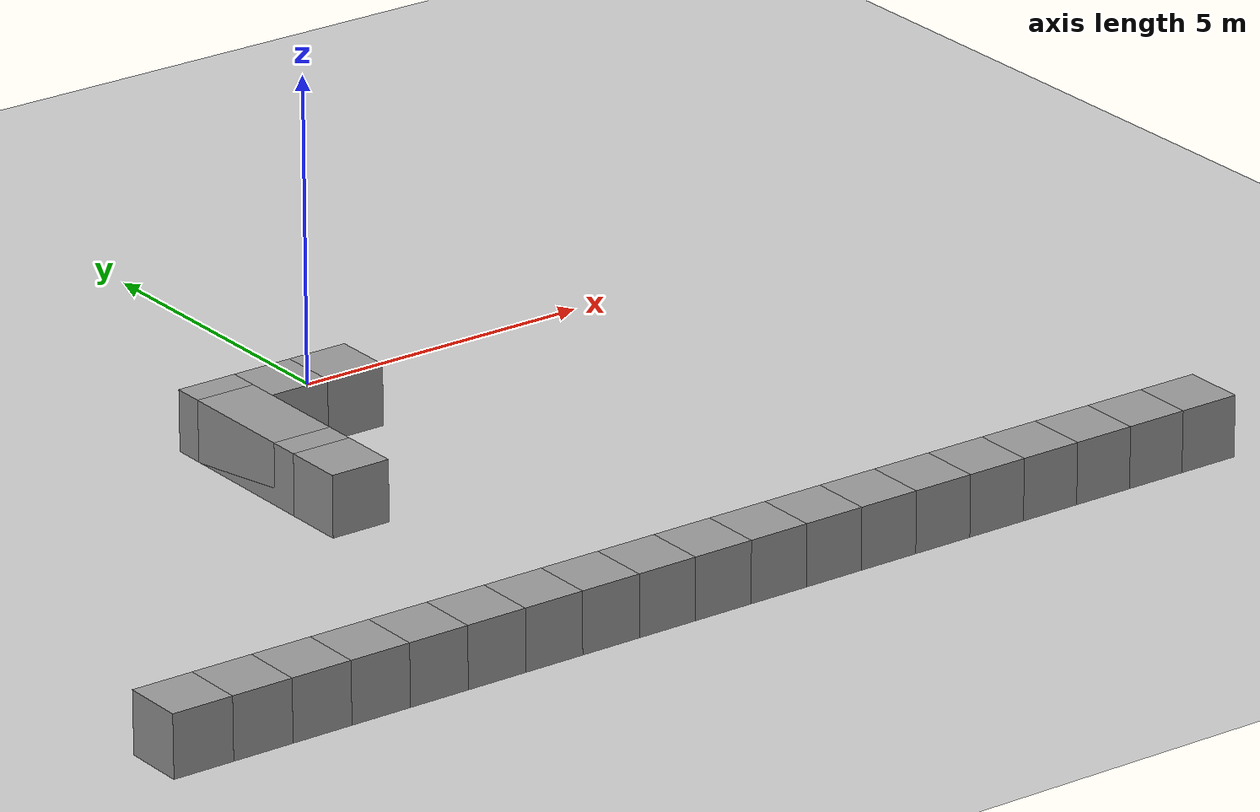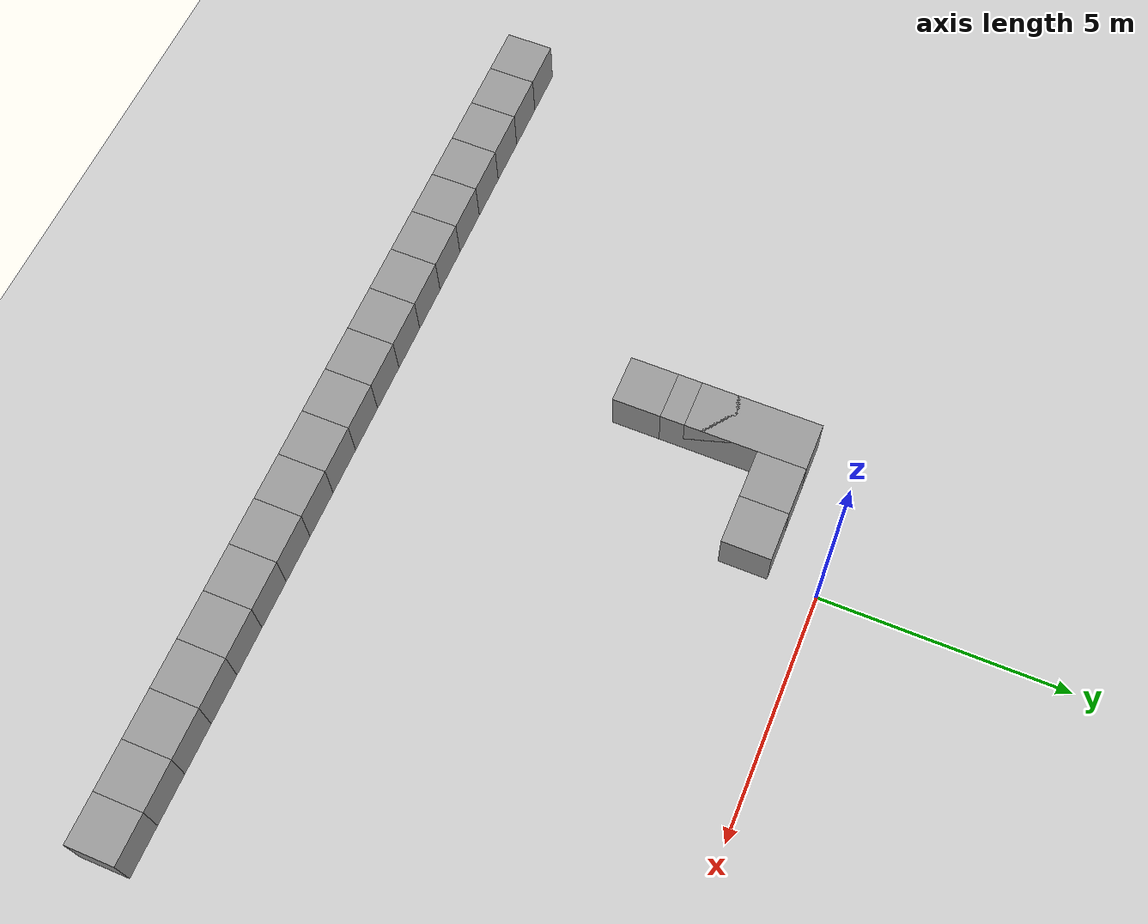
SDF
<sdf version="1.6">
 <world name="default">
  <model name="ground_plane">
   <static>1</static>
   <link name="link">
    <collision name="collision">
     <geometry><plane><normal>0 0 1</normal><size>100 100</size></plane></geometry>
     <surface><friction><ode><mu>100</mu><mu2>50</mu2></ode></friction></surface>
    </collision>
    <visual name="visual">
     <cast_shadows>0</cast_shadows>
     <geometry><plane><normal>0 0 1</normal><size>100 100</size></plane></geometry>
     <material>
      <script><uri>file://media/materials/scripts/gazebo.material</uri><name>Gazebo/Grey</name></script>
     </material>
    </visual>
   </link>
  </model>
  <model name="wall4">
   <link name="link">
    <inertial>
     <mass>1</mass>
     <inertia>
      <ixx>0.166667</ixx>
      <ixy>0</ixy>
      <ixz>0</ixz>
      <iyy>0.166667</iyy>
      <iyz>0</iyz>
      <izz>0.166667</izz>
     </inertia>
    </inertial>
    <visual name="visual">
     <geometry><box><size>1 1 1</size></box></geometry>
     <material>
      <script><name>Gazebo/Grey</name><uri>file://media/materials/scripts/gazebo.material</uri></script>
      <ambient>0.3 0.3 0.3 1</ambient>
      <diffuse>0.7 0.7 0.7 1</diffuse>
      <specular>0.01 0.01 0.01 1</specular>
      <emissive>0 0 0 1</emissive>
     </material>
    </visual>
    <collision name="collision">
     <geometry><box><size>1 1 1</size></box></geometry>
     <surface>
      <friction>
       <ode><mu>1</mu><mu2>1</mu2><fdir1>0 0 0</fdir1><slip1>0</slip1><slip2>0</slip2></ode>
       <torsional>
        <coefficient>1</coefficient>
        <patch_radius>0</patch_radius>
        <surface_radius>0</surface_radius>
        <use_patch_radius>1</use_patch_radius>
        <ode><slip>0</slip></ode>
       </torsional>
      </friction>
      <bounce><restitution_coefficient>0</restitution_coefficient><threshold>1e+06</threshold></bounce>
      <contact>
       <collide_without_contact>0</collide_without_contact>
       <collide_without_contact_bitmask>1</collide_without_contact_bitmask>
       <collide_bitmask>1</collide_bitmask>
       <ode>
        <soft_cfm>0</soft_cfm>
        <soft_erp>0.2</soft_erp>
        <kp>1e+13</kp>
        <kd>1</kd>
        <max_vel>0.01</max_vel>
        <min_depth>0</min_depth>
       </ode>
       <bullet>
        <split_impulse>1</split_impulse>
        <split_impulse_penetration_threshold>-0.01</split_impulse_penetration_threshold>
        <soft_cfm>0</soft_cfm>
        <soft_erp>0.2</soft_erp>
        <kp>1e+13</kp>
        <kd>1</kd>
       </bullet>
      </contact>
     </surface>
    </collision>
   </link>
   <link name="link_25">
    <pose>1 0 0 0 -0 0</pose>
    <inertial>
     <mass>1</mass>
     <inertia>
      <ixx>0.166667</ixx>
      <ixy>0</ixy>
      <ixz>0</ixz>
      <iyy>0.166667</iyy>
      <iyz>0</iyz>
      <izz>0.166667</izz>
     </inertia>
    </inertial>
    <visual name="visual">
     <geometry><box><size>1 1 1</size></box></geometry>
     <material>
      <lighting>1</lighting>
      <script><uri>file://media/materials/scripts/gazebo.material</uri><name>Gazebo/Grey</name></script>
      <ambient>0.3 0.3 0.3 1</ambient>
      <diffuse>0.7 0.7 0.7 1</diffuse>
      <specular>0.01 0.01 0.01 1</specular>
      <emissive>0 0 0 1</emissive>
     </material>
    </visual>
    <collision name="collision">
     <geometry><box><size>1 1 1</size></box></geometry>
     <surface>
      <friction>
       <ode><mu>1</mu><mu2>1</mu2><fdir1>0 0 0</fdir1><slip1>0</slip1><slip2>0</slip2></ode>
       <torsional>
        <coefficient>1</coefficient>
        <patch_radius>0</patch_radius>
        <surface_radius>0</surface_radius>
        <use_patch_radius>1</use_patch_radius>
        <ode><slip>0</slip></ode>
       </torsional>
      </friction>
      <bounce><restitution_coefficient>0</restitution_coefficient><threshold>1e+06</threshold></bounce>
      <contact>
       <collide_without_contact>0</collide_without_contact>
       <collide_without_contact_bitmask>1</collide_without_contact_bitmask>
       <collide_bitmask>1</collide_bitmask>
       <ode>
        <soft_cfm>0</soft_cfm>
        <soft_erp>0.2</soft_erp>
        <kp>1e+13</kp>
        <kd>1</kd>
        <max_vel>0.01</max_vel>
        <min_depth>0</min_depth>
       </ode>
       <bullet>
        <split_impulse>1</split_impulse>
        <split_impulse_penetration_threshold>-0.01</split_impulse_penetration_threshold>
        <soft_cfm>0</soft_cfm>
        <soft_erp>0.2</soft_erp>
        <kp>1e+13</kp>
        <kd>1</kd>
       </bullet>
      </contact>
     </surface>
    </collision>
   </link>
   <link name="link_26">
    <pose>2 0 0 0 -0 0</pose>
    <inertial>
     <mass>1</mass>
     <inertia>
      <ixx>0.166667</ixx>
      <ixy>0</ixy>
      <ixz>0</ixz>
      <iyy>0.166667</iyy>
      <iyz>0</iyz>
      <izz>0.166667</izz>
     </inertia>
    </inertial>
    <visual name="visual">
     <geometry><box><size>1 1 1</size></box></geometry>
     <material>
      <lighting>1</lighting>
      <script><uri>file://media/materials/scripts/gazebo.material</uri><name>Gazebo/Grey</name></script>
      <ambient>0.3 0.3 0.3 1</ambient>
      <diffuse>0.7 0.7 0.7 1</diffuse>
      <specular>0.01 0.01 0.01 1</specular>
      <emissive>0 0 0 1</emissive>
     </material>
    </visual>
    <collision name="collision">
     <geometry><box><size>1 1 1</size></box></geometry>
     <surface>
      <friction>
       <ode><mu>1</mu><mu2>1</mu2><fdir1>0 0 0</fdir1><slip1>0</slip1><slip2>0</slip2></ode>
       <torsional>
        <coefficient>1</coefficient>
        <patch_radius>0</patch_radius>
        <surface_radius>0</surface_radius>
        <use_patch_radius>1</use_patch_radius>
        <ode><slip>0</slip></ode>
       </torsional>
      </friction>
      <bounce><restitution_coefficient>0</restitution_coefficient><threshold>1e+06</threshold></bounce>
      <contact>
       <collide_without_contact>0</collide_without_contact>
       <collide_without_contact_bitmask>1</collide_without_contact_bitmask>
       <collide_bitmask>1</collide_bitmask>
       <ode>
        <soft_cfm>0</soft_cfm>
        <soft_erp>0.2</soft_erp>
        <kp>1e+13</kp>
        <kd>1</kd>
        <max_vel>0.01</max_vel>
        <min_depth>0</min_depth>
       </ode>
       <bullet>
        <split_impulse>1</split_impulse>
        <split_impulse_penetration_threshold>-0.01</split_impulse_penetration_threshold>
        <soft_cfm>0</soft_cfm>
        <soft_erp>0.2</soft_erp>
        <kp>1e+13</kp>
        <kd>1</kd>
       </bullet>
      </contact>
     </surface>
    </collision>
   </link>
   <link name="link_27">
    <pose>3 0 0 0 -0 0</pose>
    <inertial>
     <mass>1</mass>
     <inertia>
      <ixx>0.166667</ixx>
      <ixy>0</ixy>
      <ixz>0</ixz>
      <iyy>0.166667</iyy>
      <iyz>0</iyz>
      <izz>0.166667</izz>
     </inertia>
    </inertial>
    <visual name="visual">
     <geometry><box><size>1 1 1</size></box></geometry>
     <material>
      <lighting>1</lighting>
      <script><uri>file://media/materials/scripts/gazebo.material</uri><name>Gazebo/Grey</name></script>
      <ambient>0.3 0.3 0.3 1</ambient>
      <diffuse>0.7 0.7 0.7 1</diffuse>
      <specular>0.01 0.01 0.01 1</specular>
      <emissive>0 0 0 1</emissive>
     </material>
    </visual>
    <collision name="collision">
     <geometry><box><size>1 1 1</size></box></geometry>
     <surface>
      <friction>
       <ode><mu>1</mu><mu2>1</mu2><fdir1>0 0 0</fdir1><slip1>0</slip1><slip2>0</slip2></ode>
       <torsional>
        <coefficient>1</coefficient>
        <patch_radius>0</patch_radius>
        <surface_radius>0</surface_radius>
        <use_patch_radius>1</use_patch_radius>
        <ode><slip>0</slip></ode>
       </torsional>
      </friction>
      <bounce><restitution_coefficient>0</restitution_coefficient><threshold>1e+06</threshold></bounce>
      <contact>
       <collide_without_contact>0</collide_without_contact>
       <collide_without_contact_bitmask>1</collide_without_contact_bitmask>
       <collide_bitmask>1</collide_bitmask>
       <ode>
        <soft_cfm>0</soft_cfm>
        <soft_erp>0.2</soft_erp>
        <kp>1e+13</kp>
        <kd>1</kd>
        <max_vel>0.01</max_vel>
        <min_depth>0</min_depth>
       </ode>
       <bullet>
        <split_impulse>1</split_impulse>
        <split_impulse_penetration_threshold>-0.01</split_impulse_penetration_threshold>
        <soft_cfm>0</soft_cfm>
        <soft_erp>0.2</soft_erp>
        <kp>1e+13</kp>
        <kd>1</kd>
       </bullet>
      </contact>
     </surface>
    </collision>
   </link>
   <link name="link_28">
    <pose>4 0 0 0 -0 0</pose>
    <inertial>
     <mass>1</mass>
     <inertia>
      <ixx>0.166667</ixx>
      <ixy>0</ixy>
      <ixz>0</ixz>
      <iyy>0.166667</iyy>
      <iyz>0</iyz>
      <izz>0.166667</izz>
     </inertia>
    </inertial>
    <visual name="visual">
     <geometry><box><size>1 1 1</size></box></geometry>
     <material>
      <lighting>1</lighting>
      <script><uri>file://media/materials/scripts/gazebo.material</uri><name>Gazebo/Grey</name></script>
      <ambient>0.3 0.3 0.3 1</ambient>
      <diffuse>0.7 0.7 0.7 1</diffuse>
      <specular>0.01 0.01 0.01 1</specular>
      <emissive>0 0 0 1</emissive>
     </material>
    </visual>
    <collision name="collision">
     <geometry><box><size>1 1 1</size></box></geometry>
     <surface>
      <friction>
       <ode><mu>1</mu><mu2>1</mu2><fdir1>0 0 0</fdir1><slip1>0</slip1><slip2>0</slip2></ode>
       <torsional>
        <coefficient>1</coefficient>
        <patch_radius>0</patch_radius>
        <surface_radius>0</surface_radius>
        <use_patch_radius>1</use_patch_radius>
        <ode><slip>0</slip></ode>
       </torsional>
      </friction>
      <bounce><restitution_coefficient>0</restitution_coefficient><threshold>1e+06</threshold></bounce>
      <contact>
       <collide_without_contact>0</collide_without_contact>
       <collide_without_contact_bitmask>1</collide_without_contact_bitmask>
       <collide_bitmask>1</collide_bitmask>
       <ode>
        <soft_cfm>0</soft_cfm>
        <soft_erp>0.2</soft_erp>
        <kp>1e+13</kp>
        <kd>1</kd>
        <max_vel>0.01</max_vel>
        <min_depth>0</min_depth>
       </ode>
       <bullet>
        <split_impulse>1</split_impulse>
        <split_impulse_penetration_threshold>-0.01</split_impulse_penetration_threshold>
        <soft_cfm>0</soft_cfm>
        <soft_erp>0.2</soft_erp>
        <kp>1e+13</kp>
        <kd>1</kd>
       </bullet>
      </contact>
     </surface>
    </collision>
   </link>
   <link name="link_29">
    <pose>5 0 0 0 -0 0</pose>
    <inertial>
     <mass>1</mass>
     <inertia>
      <ixx>0.166667</ixx>
      <ixy>0</ixy>
      <ixz>0</ixz>
      <iyy>0.166667</iyy>
      <iyz>0</iyz>
      <izz>0.166667</izz>
     </inertia>
    </inertial>
    <visual name="visual">
     <geometry><box><size>1 1 1</size></box></geometry>
     <material>
      <lighting>1</lighting>
      <script><uri>file://media/materials/scripts/gazebo.material</uri><name>Gazebo/Grey</name></script>
      <ambient>0.3 0.3 0.3 1</ambient>
      <diffuse>0.7 0.7 0.7 1</diffuse>
      <specular>0.01 0.01 0.01 1</specular>
      <emissive>0 0 0 1</emissive>
     </material>
    </visual>
    <collision name="collision">
     <geometry><box><size>1 1 1</size></box></geometry>
     <surface>
      <friction>
       <ode><mu>1</mu><mu2>1</mu2><fdir1>0 0 0</fdir1><slip1>0</slip1><slip2>0</slip2></ode>
       <torsional>
        <coefficient>1</coefficient>
        <patch_radius>0</patch_radius>
        <surface_radius>0</surface_radius>
        <use_patch_radius>1</use_patch_radius>
        <ode><slip>0</slip></ode>
       </torsional>
      </friction>
      <bounce><restitution_coefficient>0</restitution_coefficient><threshold>1e+06</threshold></bounce>
      <contact>
       <collide_without_contact>0</collide_without_contact>
       <collide_without_contact_bitmask>1</collide_without_contact_bitmask>
       <collide_bitmask>1</collide_bitmask>
       <ode>
        <soft_cfm>0</soft_cfm>
        <soft_erp>0.2</soft_erp>
        <kp>1e+13</kp>
        <kd>1</kd>
        <max_vel>0.01</max_vel>
        <min_depth>0</min_depth>
       </ode>
       <bullet>
        <split_impulse>1</split_impulse>
        <split_impulse_penetration_threshold>-0.01</split_impulse_penetration_threshold>
        <soft_cfm>0</soft_cfm>
        <soft_erp>0.2</soft_erp>
        <kp>1e+13</kp>
        <kd>1</kd>
       </bullet>
      </contact>
     </surface>
    </collision>
   </link>
   <link name="link_30">
    <pose>6 0 0 0 -0 0</pose>
    <inertial>
     <mass>1</mass>
     <inertia>
      <ixx>0.166667</ixx>
      <ixy>0</ixy>
      <ixz>0</ixz>
      <iyy>0.166667</iyy>
      <iyz>0</iyz>
      <izz>0.166667</izz>
     </inertia>
    </inertial>
    <visual name="visual">
     <geometry><box><size>1 1 1</size></box></geometry>
     <material>
      <lighting>1</lighting>
      <script><uri>file://media/materials/scripts/gazebo.material</uri><name>Gazebo/Grey</name></script>
      <ambient>0.3 0.3 0.3 1</ambient>
      <diffuse>0.7 0.7 0.7 1</diffuse>
      <specular>0.01 0.01 0.01 1</specular>
      <emissive>0 0 0 1</emissive>
     </material>
    </visual>
    <collision name="collision">
     <geometry><box><size>1 1 1</size></box></geometry>
     <surface>
      <friction>
       <ode><mu>1</mu><mu2>1</mu2><fdir1>0 0 0</fdir1><slip1>0</slip1><slip2>0</slip2></ode>
       <torsional>
        <coefficient>1</coefficient>
        <patch_radius>0</patch_radius>
        <surface_radius>0</surface_radius>
        <use_patch_radius>1</use_patch_radius>
        <ode><slip>0</slip></ode>
       </torsional>
      </friction>
      <bounce><restitution_coefficient>0</restitution_coefficient><threshold>1e+06</threshold></bounce>
      <contact>
       <collide_without_contact>0</collide_without_contact>
       <collide_without_contact_bitmask>1</collide_without_contact_bitmask>
       <collide_bitmask>1</collide_bitmask>
       <ode>
        <soft_cfm>0</soft_cfm>
        <soft_erp>0.2</soft_erp>
        <kp>1e+13</kp>
        <kd>1</kd>
        <max_vel>0.01</max_vel>
        <min_depth>0</min_depth>
       </ode>
       <bullet>
        <split_impulse>1</split_impulse>
        <split_impulse_penetration_threshold>-0.01</split_impulse_penetration_threshold>
        <soft_cfm>0</soft_cfm>
        <soft_erp>0.2</soft_erp>
        <kp>1e+13</kp>
        <kd>1</kd>
       </bullet>
      </contact>
     </surface>
    </collision>
   </link>
   <link name="link_31">
    <pose>7 0 0 0 -0 0</pose>
    <inertial>
     <mass>1</mass>
     <inertia>
      <ixx>0.166667</ixx>
      <ixy>0</ixy>
      <ixz>0</ixz>
      <iyy>0.166667</iyy>
      <iyz>0</iyz>
      <izz>0.166667</izz>
     </inertia>
    </inertial>
    <visual name="visual">
     <geometry><box><size>1 1 1</size></box></geometry>
     <material>
      <lighting>1</lighting>
      <script><uri>file://media/materials/scripts/gazebo.material</uri><name>Gazebo/Grey</name></script>
      <ambient>0.3 0.3 0.3 1</ambient>
      <diffuse>0.7 0.7 0.7 1</diffuse>
      <specular>0.01 0.01 0.01 1</specular>
      <emissive>0 0 0 1</emissive>
     </material>
    </visual>
    <collision name="collision">
     <geometry><box><size>1 1 1</size></box></geometry>
     <surface>
      <friction>
       <ode><mu>1</mu><mu2>1</mu2><fdir1>0 0 0</fdir1><slip1>0</slip1><slip2>0</slip2></ode>
       <torsional>
        <coefficient>1</coefficient>
        <patch_radius>0</patch_radius>
        <surface_radius>0</surface_radius>
        <use_patch_radius>1</use_patch_radius>
        <ode><slip>0</slip></ode>
       </torsional>
      </friction>
      <bounce><restitution_coefficient>0</restitution_coefficient><threshold>1e+06</threshold></bounce>
      <contact>
       <collide_without_contact>0</collide_without_contact>
       <collide_without_contact_bitmask>1</collide_without_contact_bitmask>
       <collide_bitmask>1</collide_bitmask>
       <ode>
        <soft_cfm>0</soft_cfm>
        <soft_erp>0.2</soft_erp>
        <kp>1e+13</kp>
        <kd>1</kd>
        <max_vel>0.01</max_vel>
        <min_depth>0</min_depth>
       </ode>
       <bullet>
        <split_impulse>1</split_impulse>
        <split_impulse_penetration_threshold>-0.01</split_impulse_penetration_threshold>
        <soft_cfm>0</soft_cfm>
        <soft_erp>0.2</soft_erp>
        <kp>1e+13</kp>
        <kd>1</kd>
       </bullet>
      </contact>
     </surface>
    </collision>
   </link>
   <link name="link_32">
    <pose>8 0 0 0 -0 0</pose>
    <inertial>
     <mass>1</mass>
     <inertia>
      <ixx>0.166667</ixx>
      <ixy>0</ixy>
      <ixz>0</ixz>
      <iyy>0.166667</iyy>
      <iyz>0</iyz>
      <izz>0.166667</izz>
     </inertia>
    </inertial>
    <visual name="visual">
     <geometry><box><size>1 1 1</size></box></geometry>
     <material>
      <lighting>1</lighting>
      <script><uri>file://media/materials/scripts/gazebo.material</uri><name>Gazebo/Grey</name></script>
      <ambient>0.3 0.3 0.3 1</ambient>
      <diffuse>0.7 0.7 0.7 1</diffuse>
      <specular>0.01 0.01 0.01 1</specular>
      <emissive>0 0 0 1</emissive>
     </material>
    </visual>
    <collision name="collision">
     <geometry><box><size>1 1 1</size></box></geometry>
     <surface>
      <friction>
       <ode><mu>1</mu><mu2>1</mu2><fdir1>0 0 0</fdir1><slip1>0</slip1><slip2>0</slip2></ode>
       <torsional>
        <coefficient>1</coefficient>
        <patch_radius>0</patch_radius>
        <surface_radius>0</surface_radius>
        <use_patch_radius>1</use_patch_radius>
        <ode><slip>0</slip></ode>
       </torsional>
      </friction>
      <bounce><restitution_coefficient>0</restitution_coefficient><threshold>1e+06</threshold></bounce>
      <contact>
       <collide_without_contact>0</collide_without_contact>
       <collide_without_contact_bitmask>1</collide_without_contact_bitmask>
       <collide_bitmask>1</collide_bitmask>
       <ode>
        <soft_cfm>0</soft_cfm>
        <soft_erp>0.2</soft_erp>
        <kp>1e+13</kp>
        <kd>1</kd>
        <max_vel>0.01</max_vel>
        <min_depth>0</min_depth>
       </ode>
       <bullet>
        <split_impulse>1</split_impulse>
        <split_impulse_penetration_threshold>-0.01</split_impulse_penetration_threshold>
        <soft_cfm>0</soft_cfm>
        <soft_erp>0.2</soft_erp>
        <kp>1e+13</kp>
        <kd>1</kd>
       </bullet>
      </contact>
     </surface>
    </collision>
   </link>
   <link name="link_33">
    <pose>9 0 0 0 -0 0</pose>
    <inertial>
     <mass>1</mass>
     <inertia>
      <ixx>0.166667</ixx>
      <ixy>0</ixy>
      <ixz>0</ixz>
      <iyy>0.166667</iyy>
      <iyz>0</iyz>
      <izz>0.166667</izz>
     </inertia>
    </inertial>
    <visual name="visual">
     <geometry><box><size>1 1 1</size></box></geometry>
     <material>
      <lighting>1</lighting>
      <script><uri>file://media/materials/scripts/gazebo.material</uri><name>Gazebo/Grey</name></script>
      <ambient>0.3 0.3 0.3 1</ambient>
      <diffuse>0.7 0.7 0.7 1</diffuse>
      <specular>0.01 0.01 0.01 1</specular>
      <emissive>0 0 0 1</emissive>
     </material>
    </visual>
    <collision name="collision">
     <geometry><box><size>1 1 1</size></box></geometry>
     <surface>
      <friction>
       <ode><mu>1</mu><mu2>1</mu2><fdir1>0 0 0</fdir1><slip1>0</slip1><slip2>0</slip2></ode>
       <torsional>
        <coefficient>1</coefficient>
        <patch_radius>0</patch_radius>
        <surface_radius>0</surface_radius>
        <use_patch_radius>1</use_patch_radius>
        <ode><slip>0</slip></ode>
       </torsional>
      </friction>
      <bounce><restitution_coefficient>0</restitution_coefficient><threshold>1e+06</threshold></bounce>
      <contact>
       <collide_without_contact>0</collide_without_contact>
       <collide_without_contact_bitmask>1</collide_without_contact_bitmask>
       <collide_bitmask>1</collide_bitmask>
       <ode>
        <soft_cfm>0</soft_cfm>
        <soft_erp>0.2</soft_erp>
        <kp>1e+13</kp>
        <kd>1</kd>
        <max_vel>0.01</max_vel>
        <min_depth>0</min_depth>
       </ode>
       <bullet>
        <split_impulse>1</split_impulse>
        <split_impulse_penetration_threshold>-0.01</split_impulse_penetration_threshold>
        <soft_cfm>0</soft_cfm>
        <soft_erp>0.2</soft_erp>
        <kp>1e+13</kp>
        <kd>1</kd>
       </bullet>
      </contact>
     </surface>
    </collision>
   </link>
   <link name="link_34">
    <pose>-1 0 0 0 -0 0</pose>
    <inertial>
     <mass>1</mass>
     <inertia>
      <ixx>0.166667</ixx>
      <ixy>0</ixy>
      <ixz>0</ixz>
      <iyy>0.166667</iyy>
      <iyz>0</iyz>
      <izz>0.166667</izz>
     </inertia>
    </inertial>
    <visual name="visual">
     <geometry><box><size>1 1 1</size></box></geometry>
     <material>
      <lighting>1</lighting>
      <script><uri>file://media/materials/scripts/gazebo.material</uri><name>Gazebo/Grey</name></script>
      <ambient>0.3 0.3 0.3 1</ambient>
      <diffuse>0.7 0.7 0.7 1</diffuse>
      <specular>0.01 0.01 0.01 1</specular>
      <emissive>0 0 0 1</emissive>
     </material>
    </visual>
    <collision name="collision">
     <geometry><box><size>1 1 1</size></box></geometry>
     <surface>
      <friction>
       <ode><mu>1</mu><mu2>1</mu2><fdir1>0 0 0</fdir1><slip1>0</slip1><slip2>0</slip2></ode>
       <torsional>
        <coefficient>1</coefficient>
        <patch_radius>0</patch_radius>
        <surface_radius>0</surface_radius>
        <use_patch_radius>1</use_patch_radius>
        <ode><slip>0</slip></ode>
       </torsional>
      </friction>
      <bounce><restitution_coefficient>0</restitution_coefficient><threshold>1e+06</threshold></bounce>
      <contact>
       <collide_without_contact>0</collide_without_contact>
       <collide_without_contact_bitmask>1</collide_without_contact_bitmask>
       <collide_bitmask>1</collide_bitmask>
       <ode>
        <soft_cfm>0</soft_cfm>
        <soft_erp>0.2</soft_erp>
        <kp>1e+13</kp>
        <kd>1</kd>
        <max_vel>0.01</max_vel>
        <min_depth>0</min_depth>
       </ode>
       <bullet>
        <split_impulse>1</split_impulse>
        <split_impulse_penetration_threshold>-0.01</split_impulse_penetration_threshold>
        <soft_cfm>0</soft_cfm>
        <soft_erp>0.2</soft_erp>
        <kp>1e+13</kp>
        <kd>1</kd>
       </bullet>
      </contact>
     </surface>
    </collision>
   </link>
   <link name="link_35">
    <pose>-2 0 0 0 -0 0</pose>
    <inertial>
     <mass>1</mass>
     <inertia>
      <ixx>0.166667</ixx>
      <ixy>0</ixy>
      <ixz>0</ixz>
      <iyy>0.166667</iyy>
      <iyz>0</iyz>
      <izz>0.166667</izz>
     </inertia>
    </inertial>
    <visual name="visual">
     <geometry><box><size>1 1 1</size></box></geometry>
     <material>
      <lighting>1</lighting>
      <script><uri>file://media/materials/scripts/gazebo.material</uri><name>Gazebo/Grey</name></script>
      <ambient>0.3 0.3 0.3 1</ambient>
      <diffuse>0.7 0.7 0.7 1</diffuse>
      <specular>0.01 0.01 0.01 1</specular>
      <emissive>0 0 0 1</emissive>
     </material>
    </visual>
    <collision name="collision">
     <geometry><box><size>1 1 1</size></box></geometry>
     <surface>
      <friction>
       <ode><mu>1</mu><mu2>1</mu2><fdir1>0 0 0</fdir1><slip1>0</slip1><slip2>0</slip2></ode>
       <torsional>
        <coefficient>1</coefficient>
        <patch_radius>0</patch_radius>
        <surface_radius>0</surface_radius>
        <use_patch_radius>1</use_patch_radius>
        <ode><slip>0</slip></ode>
       </torsional>
      </friction>
      <bounce><restitution_coefficient>0</restitution_coefficient><threshold>1e+06</threshold></bounce>
      <contact>
       <collide_without_contact>0</collide_without_contact>
       <collide_without_contact_bitmask>1</collide_without_contact_bitmask>
       <collide_bitmask>1</collide_bitmask>
       <ode>
        <soft_cfm>0</soft_cfm>
        <soft_erp>0.2</soft_erp>
        <kp>1e+13</kp>
        <kd>1</kd>
        <max_vel>0.01</max_vel>
        <min_depth>0</min_depth>
       </ode>
       <bullet>
        <split_impulse>1</split_impulse>
        <split_impulse_penetration_threshold>-0.01</split_impulse_penetration_threshold>
        <soft_cfm>0</soft_cfm>
        <soft_erp>0.2</soft_erp>
        <kp>1e+13</kp>
        <kd>1</kd>
       </bullet>
      </contact>
     </surface>
    </collision>
   </link>
   <link name="link_36">
    <pose>-3 0 0 0 -0 0</pose>
    <inertial>
     <mass>1</mass>
     <inertia>
      <ixx>0.166667</ixx>
      <ixy>0</ixy>
      <ixz>0</ixz>
      <iyy>0.166667</iyy>
      <iyz>0</iyz>
      <izz>0.166667</izz>
     </inertia>
    </inertial>
    <visual name="visual">
     <geometry><box><size>1 1 1</size></box></geometry>
     <material>
      <lighting>1</lighting>
      <script><uri>file://media/materials/scripts/gazebo.material</uri><name>Gazebo/Grey</name></script>
      <ambient>0.3 0.3 0.3 1</ambient>
      <diffuse>0.7 0.7 0.7 1</diffuse>
      <specular>0.01 0.01 0.01 1</specular>
      <emissive>0 0 0 1</emissive>
     </material>
    </visual>
    <collision name="collision">
     <geometry><box><size>1 1 1</size></box></geometry>
     <surface>
      <friction>
       <ode><mu>1</mu><mu2>1</mu2><fdir1>0 0 0</fdir1><slip1>0</slip1><slip2>0</slip2></ode>
       <torsional>
        <coefficient>1</coefficient>
        <patch_radius>0</patch_radius>
        <surface_radius>0</surface_radius>
        <use_patch_radius>1</use_patch_radius>
        <ode><slip>0</slip></ode>
       </torsional>
      </friction>
      <bounce><restitution_coefficient>0</restitution_coefficient><threshold>1e+06</threshold></bounce>
      <contact>
       <collide_without_contact>0</collide_without_contact>
       <collide_without_contact_bitmask>1</collide_without_contact_bitmask>
       <collide_bitmask>1</collide_bitmask>
       <ode>
        <soft_cfm>0</soft_cfm>
        <soft_erp>0.2</soft_erp>
        <kp>1e+13</kp>
        <kd>1</kd>
        <max_vel>0.01</max_vel>
        <min_depth>0</min_depth>
       </ode>
       <bullet>
        <split_impulse>1</split_impulse>
        <split_impulse_penetration_threshold>-0.01</split_impulse_penetration_threshold>
        <soft_cfm>0</soft_cfm>
        <soft_erp>0.2</soft_erp>
        <kp>1e+13</kp>
        <kd>1</kd>
       </bullet>
      </contact>
     </surface>
    </collision>
   </link>
   <link name="link_37">
    <pose>-4 0 0 0 -0 0</pose>
    <inertial>
     <mass>1</mass>
     <inertia>
      <ixx>0.166667</ixx>
      <ixy>0</ixy>
      <ixz>0</ixz>
      <iyy>0.166667</iyy>
      <iyz>0</iyz>
      <izz>0.166667</izz>
     </inertia>
    </inertial>
    <visual name="visual">
     <geometry><box><size>1 1 1</size></box></geometry>
     <material>
      <lighting>1</lighting>
      <script><uri>file://media/materials/scripts/gazebo.material</uri><name>Gazebo/Grey</name></script>
      <ambient>0.3 0.3 0.3 1</ambient>
      <diffuse>0.7 0.7 0.7 1</diffuse>
      <specular>0.01 0.01 0.01 1</specular>
      <emissive>0 0 0 1</emissive>
     </material>
    </visual>
    <collision name="collision">
     <geometry><box><size>1 1 1</size></box></geometry>
     <surface>
      <friction>
       <ode><mu>1</mu><mu2>1</mu2><fdir1>0 0 0</fdir1><slip1>0</slip1><slip2>0</slip2></ode>
       <torsional>
        <coefficient>1</coefficient>
        <patch_radius>0</patch_radius>
        <surface_radius>0</surface_radius>
        <use_patch_radius>1</use_patch_radius>
        <ode><slip>0</slip></ode>
       </torsional>
      </friction>
      <bounce><restitution_coefficient>0</restitution_coefficient><threshold>1e+06</threshold></bounce>
      <contact>
       <collide_without_contact>0</collide_without_contact>
       <collide_without_contact_bitmask>1</collide_without_contact_bitmask>
       <collide_bitmask>1</collide_bitmask>
       <ode>
        <soft_cfm>0</soft_cfm>
        <soft_erp>0.2</soft_erp>
        <kp>1e+13</kp>
        <kd>1</kd>
        <max_vel>0.01</max_vel>
        <min_depth>0</min_depth>
       </ode>
       <bullet>
        <split_impulse>1</split_impulse>
        <split_impulse_penetration_threshold>-0.01</split_impulse_penetration_threshold>
        <soft_cfm>0</soft_cfm>
        <soft_erp>0.2</soft_erp>
        <kp>1e+13</kp>
        <kd>1</kd>
       </bullet>
      </contact>
     </surface>
    </collision>
   </link>
   <link name="link_38">
    <pose>-5 0 0 0 -0 0</pose>
    <inertial>
     <mass>1</mass>
     <inertia>
      <ixx>0.166667</ixx>
      <ixy>0</ixy>
      <ixz>0</ixz>
      <iyy>0.166667</iyy>
      <iyz>0</iyz>
      <izz>0.166667</izz>
     </inertia>
    </inertial>
    <visual name="visual">
     <geometry><box><size>1 1 1</size></box></geometry>
     <material>
      <lighting>1</lighting>
      <script><uri>file://media/materials/scripts/gazebo.material</uri><name>Gazebo/Grey</name></script>
      <ambient>0.3 0.3 0.3 1</ambient>
      <diffuse>0.7 0.7 0.7 1</diffuse>
      <specular>0.01 0.01 0.01 1</specular>
      <emissive>0 0 0 1</emissive>
     </material>
    </visual>
    <collision name="collision">
     <geometry><box><size>1 1 1</size></box></geometry>
     <surface>
      <friction>
       <ode><mu>1</mu><mu2>1</mu2><fdir1>0 0 0</fdir1><slip1>0</slip1><slip2>0</slip2></ode>
       <torsional>
        <coefficient>1</coefficient>
        <patch_radius>0</patch_radius>
        <surface_radius>0</surface_radius>
        <use_patch_radius>1</use_patch_radius>
        <ode><slip>0</slip></ode>
       </torsional>
      </friction>
      <bounce><restitution_coefficient>0</restitution_coefficient><threshold>1e+06</threshold></bounce>
      <contact>
       <collide_without_contact>0</collide_without_contact>
       <collide_without_contact_bitmask>1</collide_without_contact_bitmask>
       <collide_bitmask>1</collide_bitmask>
       <ode>
        <soft_cfm>0</soft_cfm>
        <soft_erp>0.2</soft_erp>
        <kp>1e+13</kp>
        <kd>1</kd>
        <max_vel>0.01</max_vel>
        <min_depth>0</min_depth>
       </ode>
       <bullet>
        <split_impulse>1</split_impulse>
        <split_impulse_penetration_threshold>-0.01</split_impulse_penetration_threshold>
        <soft_cfm>0</soft_cfm>
        <soft_erp>0.2</soft_erp>
        <kp>1e+13</kp>
        <kd>1</kd>
       </bullet>
      </contact>
     </surface>
    </collision>
   </link>
   <link name="link_39">
    <pose>-6 0 0 0 -0 0</pose>
    <inertial>
     <mass>1</mass>
     <inertia>
      <ixx>0.166667</ixx>
      <ixy>0</ixy>
      <ixz>0</ixz>
      <iyy>0.166667</iyy>
      <iyz>0</iyz>
      <izz>0.166667</izz>
     </inertia>
    </inertial>
    <visual name="visual">
     <geometry><box><size>1 1 1</size></box></geometry>
     <material>
      <lighting>1</lighting>
      <script><uri>file://media/materials/scripts/gazebo.material</uri><name>Gazebo/Grey</name></script>
      <ambient>0.3 0.3 0.3 1</ambient>
      <diffuse>0.7 0.7 0.7 1</diffuse>
      <specular>0.01 0.01 0.01 1</specular>
      <emissive>0 0 0 1</emissive>
     </material>
    </visual>
    <collision name="collision">
     <geometry><box><size>1 1 1</size></box></geometry>
     <surface>
      <friction>
       <ode><mu>1</mu><mu2>1</mu2><fdir1>0 0 0</fdir1><slip1>0</slip1><slip2>0</slip2></ode>
       <torsional>
        <coefficient>1</coefficient>
        <patch_radius>0</patch_radius>
        <surface_radius>0</surface_radius>
        <use_patch_radius>1</use_patch_radius>
        <ode><slip>0</slip></ode>
       </torsional>
      </friction>
      <bounce><restitution_coefficient>0</restitution_coefficient><threshold>1e+06</threshold></bounce>
      <contact>
       <collide_without_contact>0</collide_without_contact>
       <collide_without_contact_bitmask>1</collide_without_contact_bitmask>
       <collide_bitmask>1</collide_bitmask>
       <ode>
        <soft_cfm>0</soft_cfm>
        <soft_erp>0.2</soft_erp>
        <kp>1e+13</kp>
        <kd>1</kd>
        <max_vel>0.01</max_vel>
        <min_depth>0</min_depth>
       </ode>
       <bullet>
        <split_impulse>1</split_impulse>
        <split_impulse_penetration_threshold>-0.01</split_impulse_penetration_threshold>
        <soft_cfm>0</soft_cfm>
        <soft_erp>0.2</soft_erp>
        <kp>1e+13</kp>
        <kd>1</kd>
       </bullet>
      </contact>
     </surface>
    </collision>
   </link>
   <link name="link_40">
    <pose>-7 0 0 0 -0 0</pose>
    <inertial>
     <mass>1</mass>
     <inertia>
      <ixx>0.166667</ixx>
      <ixy>0</ixy>
      <ixz>0</ixz>
      <iyy>0.166667</iyy>
      <iyz>0</iyz>
      <izz>0.166667</izz>
     </inertia>
    </inertial>
    <visual name="visual">
     <geometry><box><size>1 1 1</size></box></geometry>
     <material>
      <lighting>1</lighting>
      <script><uri>file://media/materials/scripts/gazebo.material</uri><name>Gazebo/Grey</name></script>
      <ambient>0.3 0.3 0.3 1</ambient>
      <diffuse>0.7 0.7 0.7 1</diffuse>
      <specular>0.01 0.01 0.01 1</specular>
      <emissive>0 0 0 1</emissive>
     </material>
    </visual>
    <collision name="collision">
     <geometry><box><size>1 1 1</size></box></geometry>
     <surface>
      <friction>
       <ode><mu>1</mu><mu2>1</mu2><fdir1>0 0 0</fdir1><slip1>0</slip1><slip2>0</slip2></ode>
       <torsional>
        <coefficient>1</coefficient>
        <patch_radius>0</patch_radius>
        <surface_radius>0</surface_radius>
        <use_patch_radius>1</use_patch_radius>
        <ode><slip>0</slip></ode>
       </torsional>
      </friction>
      <bounce><restitution_coefficient>0</restitution_coefficient><threshold>1e+06</threshold></bounce>
      <contact>
       <collide_without_contact>0</collide_without_contact>
       <collide_without_contact_bitmask>1</collide_without_contact_bitmask>
       <collide_bitmask>1</collide_bitmask>
       <ode>
        <soft_cfm>0</soft_cfm>
        <soft_erp>0.2</soft_erp>
        <kp>1e+13</kp>
        <kd>1</kd>
        <max_vel>0.01</max_vel>
        <min_depth>0</min_depth>
       </ode>
       <bullet>
        <split_impulse>1</split_impulse>
        <split_impulse_penetration_threshold>-0.01</split_impulse_penetration_threshold>
        <soft_cfm>0</soft_cfm>
        <soft_erp>0.2</soft_erp>
        <kp>1e+13</kp>
        <kd>1</kd>
       </bullet>
      </contact>
     </surface>
    </collision>
   </link>
   <link name="link_41">
    <pose>-8 0 0 0 -0 0</pose>
    <inertial>
     <mass>1</mass>
     <inertia>
      <ixx>0.166667</ixx>
      <ixy>0</ixy>
      <ixz>0</ixz>
      <iyy>0.166667</iyy>
      <iyz>0</iyz>
      <izz>0.166667</izz>
     </inertia>
    </inertial>
    <visual name="visual">
     <geometry><box><size>1 1 1</size></box></geometry>
     <material>
      <lighting>1</lighting>
      <script><uri>file://media/materials/scripts/gazebo.material</uri><name>Gazebo/Grey</name></script>
      <ambient>0.3 0.3 0.3 1</ambient>
      <diffuse>0.7 0.7 0.7 1</diffuse>
      <specular>0.01 0.01 0.01 1</specular>
      <emissive>0 0 0 1</emissive>
     </material>
    </visual>
    <collision name="collision">
     <geometry><box><size>1 1 1</size></box></geometry>
     <surface>
      <friction>
       <ode><mu>1</mu><mu2>1</mu2><fdir1>0 0 0</fdir1><slip1>0</slip1><slip2>0</slip2></ode>
       <torsional>
        <coefficient>1</coefficient>
        <patch_radius>0</patch_radius>
        <surface_radius>0</surface_radius>
        <use_patch_radius>1</use_patch_radius>
        <ode><slip>0</slip></ode>
       </torsional>
      </friction>
      <bounce><restitution_coefficient>0</restitution_coefficient><threshold>1e+06</threshold></bounce>
      <contact>
       <collide_without_contact>0</collide_without_contact>
       <collide_without_contact_bitmask>1</collide_without_contact_bitmask>
       <collide_bitmask>1</collide_bitmask>
       <ode>
        <soft_cfm>0</soft_cfm>
        <soft_erp>0.2</soft_erp>
        <kp>1e+13</kp>
        <kd>1</kd>
        <max_vel>0.01</max_vel>
        <min_depth>0</min_depth>
       </ode>
       <bullet>
        <split_impulse>1</split_impulse>
        <split_impulse_penetration_threshold>-0.01</split_impulse_penetration_threshold>
        <soft_cfm>0</soft_cfm>
        <soft_erp>0.2</soft_erp>
        <kp>1e+13</kp>
        <kd>1</kd>
       </bullet>
      </contact>
     </surface>
    </collision>
   </link>
   <link name="link_42">
    <pose>-9 0 0 0 -0 0</pose>
    <inertial>
     <mass>1</mass>
     <inertia>
      <ixx>0.166667</ixx>
      <ixy>0</ixy>
      <ixz>0</ixz>
      <iyy>0.166667</iyy>
      <iyz>0</iyz>
      <izz>0.166667</izz>
     </inertia>
    </inertial>
    <visual name="visual">
     <geometry><box><size>1 1 1</size></box></geometry>
     <material>
      <lighting>1</lighting>
      <script><uri>file://media/materials/scripts/gazebo.material</uri><name>Gazebo/Grey</name></script>
      <ambient>0.3 0.3 0.3 1</ambient>
      <diffuse>0.7 0.7 0.7 1</diffuse>
      <specular>0.01 0.01 0.01 1</specular>
      <emissive>0 0 0 1</emissive>
     </material>
    </visual>
    <collision name="collision">
     <geometry><box><size>1 1 1</size></box></geometry>
     <surface>
      <friction>
       <ode><mu>1</mu><mu2>1</mu2><fdir1>0 0 0</fdir1><slip1>0</slip1><slip2>0</slip2></ode>
       <torsional>
        <coefficient>1</coefficient>
        <patch_radius>0</patch_radius>
        <surface_radius>0</surface_radius>
        <use_patch_radius>1</use_patch_radius>
        <ode><slip>0</slip></ode>
       </torsional>
      </friction>
      <bounce><restitution_coefficient>0</restitution_coefficient><threshold>1e+06</threshold></bounce>
      <contact>
       <collide_without_contact>0</collide_without_contact>
       <collide_without_contact_bitmask>1</collide_without_contact_bitmask>
       <collide_bitmask>1</collide_bitmask>
       <ode>
        <soft_cfm>0</soft_cfm>
        <soft_erp>0.2</soft_erp>
        <kp>1e+13</kp>
        <kd>1</kd>
        <max_vel>0.01</max_vel>
        <min_depth>0</min_depth>
       </ode>
       <bullet>
        <split_impulse>1</split_impulse>
        <split_impulse_penetration_threshold>-0.01</split_impulse_penetration_threshold>
        <soft_cfm>0</soft_cfm>
        <soft_erp>0.2</soft_erp>
        <kp>1e+13</kp>
        <kd>1</kd>
       </bullet>
      </contact>
     </surface>
    </collision>
   </link>
   <static>0</static>
   <pose>0 -10 0.5 0 -0 0</pose>
  </model>
  <model name="obstacle2">
   <link name="link">
    <inertial>
     <mass>1</mass>
     <inertia>
      <ixx>0.166667</ixx>
      <ixy>0</ixy>
      <ixz>0</ixz>
      <iyy>0.166667</iyy>
      <iyz>0</iyz>
      <izz>0.166667</izz>
     </inertia>
    </inertial>
    <visual name="ModelPreview_13::link::visual_1">
     <geometry><box><size>1 2 1</size></box></geometry>
     <material>
      <script><name>Gazebo/Grey</name><uri>file://media/materials/scripts/gazebo.material</uri></script>
      <ambient>0.3 0.3 0.3 1</ambient>
      <diffuse>0.7 0.7 0.7 1</diffuse>
      <specular>0.01 0.01 0.01 1</specular>
      <emissive>0 0 0 1</emissive>
      <shader type="vertex"><normal_map>__default__</normal_map></shader>
     </material>
    </visual>
    <visual name="visual">
     <geometry><box><size>1 3 1</size></box></geometry>
     <material>
      <script><name>Gazebo/Grey</name><uri>file://media/materials/scripts/gazebo.material</uri></script>
      <ambient>0.3 0.3 0.3 1</ambient>
      <diffuse>0.7 0.7 0.7 1</diffuse>
      <specular>0.01 0.01 0.01 1</specular>
      <emissive>0 0 0 1</emissive>
      <shader type="vertex"><normal_map>__default__</normal_map></shader>
     </material>
    </visual>
    <collision name="collision">
     <geometry><box><size>1 3 1</size></box></geometry>
     <surface>
      <friction>
       <ode><mu>1</mu><mu2>1</mu2><fdir1>0 0 0</fdir1><slip1>0</slip1><slip2>0</slip2></ode>
       <torsional>
        <coefficient>1</coefficient>
        <patch_radius>0</patch_radius>
        <surface_radius>0</surface_radius>
        <use_patch_radius>1</use_patch_radius>
        <ode><slip>0</slip></ode>
       </torsional>
      </friction>
      <bounce><restitution_coefficient>0</restitution_coefficient><threshold>1e+06</threshold></bounce>
      <contact>
       <collide_without_contact>0</collide_without_contact>
       <collide_without_contact_bitmask>1</collide_without_contact_bitmask>
       <collide_bitmask>1</collide_bitmask>
       <ode>
        <soft_cfm>0</soft_cfm>
        <soft_erp>0.2</soft_erp>
        <kp>1e+13</kp>
        <kd>1</kd>
        <max_vel>0.01</max_vel>
        <min_depth>0</min_depth>
       </ode>
       <bullet>
        <split_impulse>1</split_impulse>
        <split_impulse_penetration_threshold>-0.01</split_impulse_penetration_threshold>
        <soft_cfm>0</soft_cfm>
        <soft_erp>0.2</soft_erp>
        <kp>1e+13</kp>
        <kd>1</kd>
       </bullet>
      </contact>
     </surface>
    </collision>
   </link>
   <link name="link_6">
    <pose>1 1 0 0 -0 0</pose>
    <inertial>
     <mass>1</mass>
     <inertia>
      <ixx>0.166667</ixx>
      <ixy>0</ixy>
      <ixz>0</ixz>
      <iyy>0.166667</iyy>
      <iyz>0</iyz>
      <izz>0.166667</izz>
     </inertia>
    </inertial>
    <visual name="visual">
     <geometry><box><size>1 1 1</size></box></geometry>
     <material>
      <lighting>1</lighting>
      <script><uri>file://media/materials/scripts/gazebo.material</uri><name>Gazebo/Grey</name></script>
      <ambient>0.3 0.3 0.3 1</ambient>
      <diffuse>0.7 0.7 0.7 1</diffuse>
      <specular>0.01 0.01 0.01 1</specular>
      <emissive>0 0 0 1</emissive>
      <shader type="vertex"><normal_map>__default__</normal_map></shader>
     </material>
    </visual>
    <collision name="collision">
     <geometry><box><size>1 1 1</size></box></geometry>
     <surface>
      <friction>
       <ode><mu>1</mu><mu2>1</mu2><fdir1>0 0 0</fdir1><slip1>0</slip1><slip2>0</slip2></ode>
       <torsional>
        <coefficient>1</coefficient>
        <patch_radius>0</patch_radius>
        <surface_radius>0</surface_radius>
        <use_patch_radius>1</use_patch_radius>
        <ode><slip>0</slip></ode>
       </torsional>
      </friction>
      <bounce><restitution_coefficient>0</restitution_coefficient><threshold>1e+06</threshold></bounce>
      <contact>
       <collide_without_contact>0</collide_without_contact>
       <collide_without_contact_bitmask>1</collide_without_contact_bitmask>
       <collide_bitmask>1</collide_bitmask>
       <ode>
        <soft_cfm>0</soft_cfm>
        <soft_erp>0.2</soft_erp>
        <kp>1e+13</kp>
        <kd>1</kd>
        <max_vel>0.01</max_vel>
        <min_depth>0</min_depth>
       </ode>
       <bullet>
        <split_impulse>1</split_impulse>
        <split_impulse_penetration_threshold>-0.01</split_impulse_penetration_threshold>
        <soft_cfm>0</soft_cfm>
        <soft_erp>0.2</soft_erp>
        <kp>1e+13</kp>
        <kd>1</kd>
       </bullet>
      </contact>
     </surface>
    </collision>
   </link>
   <link name="link_7">
    <pose>2 1 0 0 -0 0</pose>
    <inertial>
     <mass>1</mass>
     <inertia>
      <ixx>0.166667</ixx>
      <ixy>0</ixy>
      <ixz>0</ixz>
      <iyy>0.166667</iyy>
      <iyz>0</iyz>
      <izz>0.166667</izz>
     </inertia>
    </inertial>
    <visual name="visual">
     <geometry><box><size>1 1 1</size></box></geometry>
     <material>
      <lighting>1</lighting>
      <script><uri>file://media/materials/scripts/gazebo.material</uri><name>Gazebo/Grey</name></script>
      <ambient>0.3 0.3 0.3 1</ambient>
      <diffuse>0.7 0.7 0.7 1</diffuse>
      <specular>0.01 0.01 0.01 1</specular>
      <emissive>0 0 0 1</emissive>
      <shader type="vertex"><normal_map>__default__</normal_map></shader>
     </material>
    </visual>
    <collision name="collision">
     <geometry><box><size>1 1 1</size></box></geometry>
     <surface>
      <friction>
       <ode><mu>1</mu><mu2>1</mu2><fdir1>0 0 0</fdir1><slip1>0</slip1><slip2>0</slip2></ode>
       <torsional>
        <coefficient>1</coefficient>
        <patch_radius>0</patch_radius>
        <surface_radius>0</surface_radius>
        <use_patch_radius>1</use_patch_radius>
        <ode><slip>0</slip></ode>
       </torsional>
      </friction>
      <bounce><restitution_coefficient>0</restitution_coefficient><threshold>1e+06</threshold></bounce>
      <contact>
       <collide_without_contact>0</collide_without_contact>
       <collide_without_contact_bitmask>1</collide_without_contact_bitmask>
       <collide_bitmask>1</collide_bitmask>
       <ode>
        <soft_cfm>0</soft_cfm>
        <soft_erp>0.2</soft_erp>
        <kp>1e+13</kp>
        <kd>1</kd>
        <max_vel>0.01</max_vel>
        <min_depth>0</min_depth>
       </ode>
       <bullet>
        <split_impulse>1</split_impulse>
        <split_impulse_penetration_threshold>-0.01</split_impulse_penetration_threshold>
        <soft_cfm>0</soft_cfm>
        <soft_erp>0.2</soft_erp>
        <kp>1e+13</kp>
        <kd>1</kd>
       </bullet>
      </contact>
     </surface>
    </collision>
   </link>
   <link name="link_8">
    <pose>0 -2 0 0 -0 0</pose>
    <inertial>
     <mass>1</mass>
     <inertia>
      <ixx>0.166667</ixx>
      <ixy>0</ixy>
      <ixz>0</ixz>
      <iyy>0.166667</iyy>
      <iyz>0</iyz>
      <izz>0.166667</izz>
     </inertia>
    </inertial>
    <visual name="visual">
     <geometry><box><size>1 1 1</size></box></geometry>
     <material>
      <lighting>1</lighting>
      <script><uri>file://media/materials/scripts/gazebo.material</uri><name>Gazebo/Grey</name></script>
      <ambient>0.3 0.3 0.3 1</ambient>
      <diffuse>0.7 0.7 0.7 1</diffuse>
      <specular>0.01 0.01 0.01 1</specular>
      <emissive>0 0 0 1</emissive>
      <shader type="vertex"><normal_map>__default__</normal_map></shader>
     </material>
    </visual>
    <collision name="collision">
     <geometry><box><size>1 1 1</size></box></geometry>
     <surface>
      <friction>
       <ode><mu>1</mu><mu2>1</mu2><fdir1>0 0 0</fdir1><slip1>0</slip1><slip2>0</slip2></ode>
       <torsional>
        <coefficient>1</coefficient>
        <patch_radius>0</patch_radius>
        <surface_radius>0</surface_radius>
        <use_patch_radius>1</use_patch_radius>
        <ode><slip>0</slip></ode>
       </torsional>
      </friction>
      <bounce><restitution_coefficient>0</restitution_coefficient><threshold>1e+06</threshold></bounce>
      <contact>
       <collide_without_contact>0</collide_without_contact>
       <collide_without_contact_bitmask>1</collide_without_contact_bitmask>
       <collide_bitmask>1</collide_bitmask>
       <ode>
        <soft_cfm>0</soft_cfm>
        <soft_erp>0.2</soft_erp>
        <kp>1e+13</kp>
        <kd>1</kd>
        <max_vel>0.01</max_vel>
        <min_depth>0</min_depth>
       </ode>
       <bullet>
        <split_impulse>1</split_impulse>
        <split_impulse_penetration_threshold>-0.01</split_impulse_penetration_threshold>
        <soft_cfm>0</soft_cfm>
        <soft_erp>0.2</soft_erp>
        <kp>1e+13</kp>
        <kd>1</kd>
       </bullet>
      </contact>
     </surface>
    </collision>
   </link>
   <static>0</static>
   <pose>-2.5 -2.5 0.5 0 -0 0</pose>
  </model>
 </world>
</sdf>
